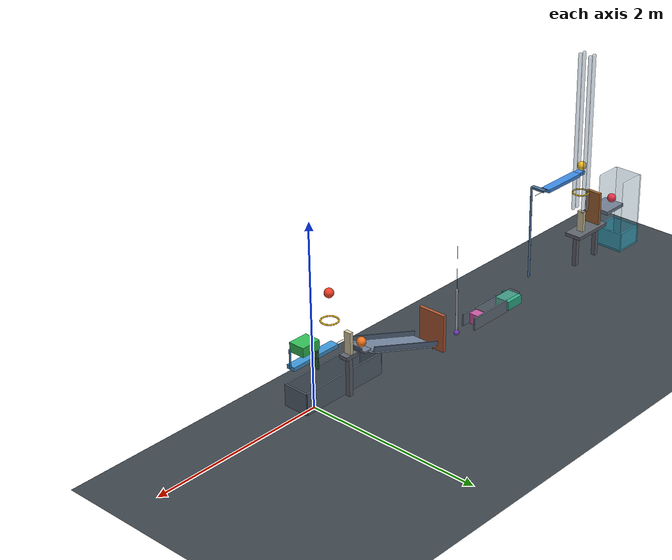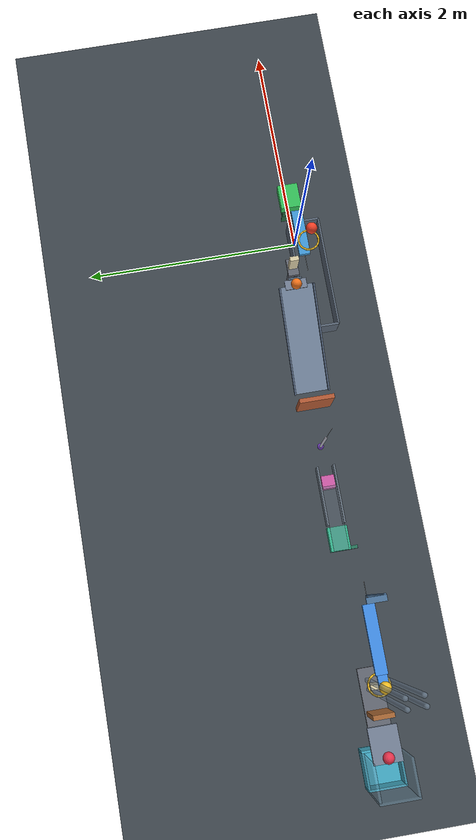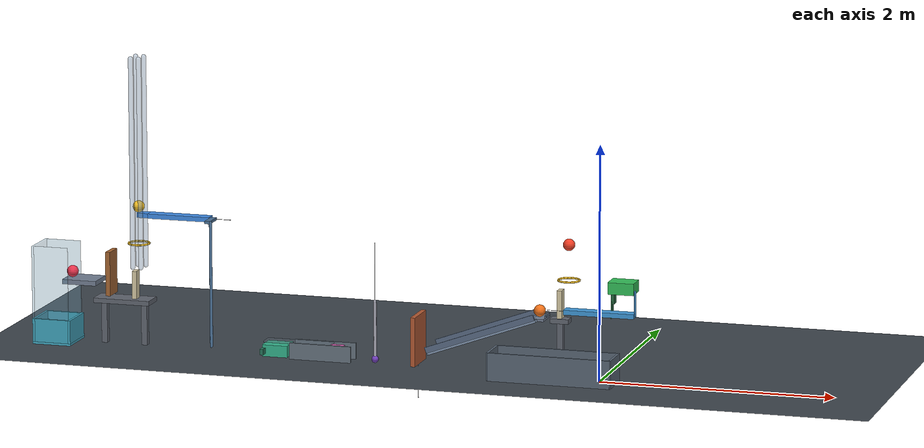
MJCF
<mujoco model="passive_chain_reaction_revised">
  <compiler angle="radian" autolimits="true"/>
  <option timestep="0.002" gravity="0 0 -9.81" integrator="implicitfast" iterations="100" tolerance="1e-10" o_friction="0.72 0.72 0.005 0.0001 0.0001" o_solref="0.01 0.7156" o_solimp="0.95 0.99 0.001">
    <flag override="enable"/>
  </option>
  <size njmax="3000" nconmax="800"/>
  <visual>
    <global azimuth="110" elevation="-25"/>
    <quality shadowsize="2048"/>
    <map znear="0.01" zfar="40"/>
  </visual>

  <worldbody>
    <light name="key_light" pos="-2 -3 6" dir="0 0 -1" diffuse="0.8 0.8 0.8"/>
    <light name="fill_light" pos="-3 3 4" dir="0 0 -1" diffuse="0.45 0.45 0.45"/>
    <camera name="overview" pos="-2.2 -7 3.6" xyaxes="1 0 0 0 0.38 0.925"/>
    <geom name="floor" type="plane" size="8 5 0.1" condim="6" friction="0.72 0.005 0.0001" rgba="0.24 0.27 0.30 1"/>

    <!-- Initially dead-centre extension springs supplement contact impulses. -->
    <site name="lever_spring_anchor" pos="-0.45 0 0.58" size="0.004" rgba="0.7 0.7 0.7 1"/>
    <site name="door_spring_anchor" pos="-1.609693 0.12 -0.275" size="0.004" rgba="0.7 0.7 0.7 1"/>
    <site name="pendulum_spring_anchor" pos="-1.99 0.12 1.03" size="0.004" rgba="0.7 0.7 0.7 1"/>
    <site name="seesaw_spring_anchor" pos="-3.270 0.12 1.15" size="0.004" rgba="0.7 0.7 0.7 1"/>

    <body name="ball1" pos="-0.26 -0.02 1.15">
      <freejoint name="ball1_free"/>
      <geom name="ball1_sphere" type="sphere" size="0.05" mass="0.20" condim="6" rgba="0.95 0.25 0.15 1"/>
    </body>

    <!-- Capsule centre lines circumscribe a circle of radius 0.088 m. -->
    <body name="ring1" pos="-0.26 -0.02 0.85">
      <geom name="ring1_01" type="capsule" fromto="0.089724 0 0 0.082894 0.034336 0" size="0.008" rgba="0.95 0.75 0.15 1"/>
      <geom name="ring1_02" type="capsule" fromto="0.082894 0.034336 0 0.063444 0.063444 0" size="0.008" rgba="0.95 0.75 0.15 1"/>
      <geom name="ring1_03" type="capsule" fromto="0.063444 0.063444 0 0.034336 0.082894 0" size="0.008" rgba="0.95 0.75 0.15 1"/>
      <geom name="ring1_04" type="capsule" fromto="0.034336 0.082894 0 0 0.089724 0" size="0.008" rgba="0.95 0.75 0.15 1"/>
      <geom name="ring1_05" type="capsule" fromto="0 0.089724 0 -0.034336 0.082894 0" size="0.008" rgba="0.95 0.75 0.15 1"/>
      <geom name="ring1_06" type="capsule" fromto="-0.034336 0.082894 0 -0.063444 0.063444 0" size="0.008" rgba="0.95 0.75 0.15 1"/>
      <geom name="ring1_07" type="capsule" fromto="-0.063444 0.063444 0 -0.082894 0.034336 0" size="0.008" rgba="0.95 0.75 0.15 1"/>
      <geom name="ring1_08" type="capsule" fromto="-0.082894 0.034336 0 -0.089724 0 0" size="0.008" rgba="0.95 0.75 0.15 1"/>
      <geom name="ring1_09" type="capsule" fromto="-0.089724 0 0 -0.082894 -0.034336 0" size="0.008" rgba="0.95 0.75 0.15 1"/>
      <geom name="ring1_10" type="capsule" fromto="-0.082894 -0.034336 0 -0.063444 -0.063444 0" size="0.008" rgba="0.95 0.75 0.15 1"/>
      <geom name="ring1_11" type="capsule" fromto="-0.063444 -0.063444 0 -0.034336 -0.082894 0" size="0.008" rgba="0.95 0.75 0.15 1"/>
      <geom name="ring1_12" type="capsule" fromto="-0.034336 -0.082894 0 0 -0.089724 0" size="0.008" rgba="0.95 0.75 0.15 1"/>
      <geom name="ring1_13" type="capsule" fromto="0 -0.089724 0 0.034336 -0.082894 0" size="0.008" rgba="0.95 0.75 0.15 1"/>
      <geom name="ring1_14" type="capsule" fromto="0.034336 -0.082894 0 0.063444 -0.063444 0" size="0.008" rgba="0.95 0.75 0.15 1"/>
      <geom name="ring1_15" type="capsule" fromto="0.063444 -0.063444 0 0.082894 -0.034336 0" size="0.008" rgba="0.95 0.75 0.15 1"/>
      <geom name="ring1_16" type="capsule" fromto="0.082894 -0.034336 0 0.089724 0 0" size="0.008" rgba="0.95 0.75 0.15 1"/>
    </body>

    <body name="lever1" pos="0 0 0.58">
      <inertial pos="0 0 0" mass="0.50" diaginertia="0.000483333 0.015066667 0.015416667"/>
      <joint name="lever1_hinge" type="hinge" axis="0 -1 0" damping="0.04" limited="true" range="0 0.785398163" solreflimit="0.004 1"/>
      <geom name="lever1_beam" type="box" size="0.30 0.05 0.02" mass="0" rgba="0.25 0.60 0.85 1"/>
      <geom name="lever1_kicker" type="capsule" fromto="0.302 0 0 0.302 0 0.20" size="0.010" mass="0" rgba="0.20 0.45 0.65 1"/>
      <site name="lever_spring_tip" pos="0.28 0 0" size="0.004"/>
    </body>

    <!-- The elevated horn strikes a vertical cart face, not its constrained underside. -->
    <body name="cart1" pos="0.18 0.075 0.80">
      <joint name="cart1_slide" type="slide" axis="-1 0 0" damping="0.20" limited="true" range="0 0.42" solreflimit="0.006 1"/>
      <geom name="cart1_box" type="box" size="0.11 0.09 0.05" mass="0.50" rgba="0.20 0.75 0.35 1"/>
      <geom name="cart1_striker" type="box" pos="-0.105 0.045 -0.18" size="0.005 0.03 0.10" mass="0" rgba="0.15 0.40 0.25 1"/>
      <geom name="cart1_striker_link" type="box" pos="-0.095 0.045 -0.10" size="0.015 0.03 0.055" mass="0" rgba="0.15 0.40 0.25 1"/>
    </body>

    <!-- Catch ball1 after its lever impact so it cannot trigger downstream parts. -->
    <body name="ball1_catch" pos="-0.375 -0.095 0">
      <geom name="ball1_catch_left" type="box" pos="-0.525 0 0.12" size="0.010 0.145 0.12" rgba="0.35 0.40 0.46 1"/>
      <geom name="ball1_catch_right" type="box" pos="0.525 0 0.12" size="0.010 0.145 0.12" rgba="0.35 0.40 0.46 1"/>
      <geom name="ball1_catch_front" type="box" pos="0 -0.145 0.12" size="0.525 0.008 0.12" rgba="0.35 0.40 0.46 1"/>
      <geom name="ball1_catch_back" type="box" pos="0 0.145 0.12" size="0.525 0.008 0.12" rgba="0.35 0.40 0.46 1"/>
    </body>

    <body name="domino1" pos="-0.37 0.12 0.612020143">
      <freejoint name="domino1_free"/>
      <geom name="domino1_box" type="box" size="0.02 0.04 0.12" mass="0.25" rgba="0.85 0.80 0.65 1"/>
    </body>

    <body name="domino1_support" pos="-0.37 0.12 0.472020143">
      <geom name="domino1_support_top" type="box" size="0.08 0.05 0.02" rgba="0.38 0.40 0.44 1"/>
      <geom name="domino1_support_leg" type="box" pos="0 0 -0.2260100715" size="0.025 0.025 0.2260100715" rgba="0.38 0.40 0.44 1"/>
    </body>

    <body name="ball2" pos="-0.55 0.12 0.543020143">
      <freejoint name="ball2_free"/>
      <geom name="ball2_sphere" type="sphere" size="0.05" mass="0.20" condim="6" rgba="0.95 0.45 0.10 1"/>
    </body>

    <body name="ramp1_entry" pos="-0.535 0.12 0.482020143">
      <geom name="ramp1_entry_plate" type="box" size="0.045 0.10 0.01" rgba="0.45 0.50 0.58 1"/>
      <geom name="ramp1_entry_backstop" type="box" pos="0.048 0 0.023" size="0.007 0.060 0.010" rgba="0.35 0.42 0.50 1"/>
    </body>

    <body name="ramp1" pos="-1.016426169 0.12 0.311613145" quat="0.984807753 0 -0.173648178 0">
      <geom name="ramp1_surface" type="box" size="0.50 0.15 0.01" rgba="0.50 0.58 0.68 1"/>
      <geom name="ramp1_side_a" type="box" pos="0 -0.157 0.035" size="0.50 0.007 0.025" rgba="0.35 0.42 0.52 1"/>
      <geom name="ramp1_side_b" type="box" pos="0 0.157 0.035" size="0.50 0.007 0.025" rgba="0.35 0.42 0.52 1"/>
    </body>

    <!-- Hinge elevation clears the panel's rotating lower corner through 70 degrees. -->
    <body name="door1" pos="-1.609693 0.12 0.025">
      <joint name="door1_hinge" type="hinge" axis="0 -1 0" damping="0.04" limited="true" range="0 1.221730476" solreflimit="0.004 1"/>
      <geom name="door1_panel" type="box" pos="0 0 0.21" size="0.02 0.16 0.21" mass="0.45" rgba="0.70 0.35 0.20 1"/>
      <site name="door_spring_tip" pos="0 0 0.35" size="0.004"/>
    </body>

    <body name="pendulum1" pos="-1.99 0.12 0.53">
      <joint name="pendulum1_hinge" type="hinge" axis="0 1 0" damping="0.04" limited="true" range="0 0.663225116" solreflimit="0.006 1"/>
      <geom name="pendulum1_rod" type="capsule" fromto="0 0 0 0 0 -0.50" size="0.012" mass="0.07" rgba="0.65 0.65 0.70 1"/>
      <geom name="pendulum1_bob" type="sphere" pos="0 0 -0.50" size="0.03" mass="0.28" rgba="0.45 0.25 0.75 1"/>
      <site name="pendulum_spring_tip" pos="0 0 -0.50" size="0.004"/>
    </body>

    <body name="block1" pos="-2.333 0.12 0.06">
      <freejoint name="block1_free"/>
      <geom name="block1_box" type="box" size="0.06 0.06 0.06" mass="0.35" rgba="0.80 0.35 0.65 1"/>
    </body>

    <body name="block1_guide" pos="-2.61 0.12 0">
      <geom name="block1_guide_a" type="box" pos="0.157 -0.077 0.070" size="0.270 0.008 0.070" rgba="0.40 0.45 0.50 1"/>
      <geom name="block1_guide_b" type="box" pos="0.157 0.077 0.070" size="0.270 0.008 0.070" rgba="0.40 0.45 0.50 1"/>
      <geom name="block1_guide_roof" type="box" pos="-0.0565 0 0.132" size="0.2935 0.068 0.005" rgba="0.40 0.45 0.50 0.35"/>
    </body>

    <body name="cart2" pos="-2.853 0.12 0.06">
      <joint name="cart2_slide" type="slide" axis="-1 0 0" damping="0.20" limited="true" range="0 0.42" solreflimit="0.006 1"/>
      <geom name="cart2_box" type="box" size="0.11 0.09 0.05" mass="0.50" rgba="0.20 0.70 0.55 1"/>
      <geom name="cart2_side_striker" type="box" pos="-0.095 -0.0675 0" size="0.015 0.0875 0.025" mass="0" rgba="0.15 0.45 0.35 1"/>
    </body>

    <!-- Overall beam dimensions are 0.65 by 0.10 by 0.04 m. -->
    <!-- Its narrowed launch neck passes between the vertical guide rails. -->
    <body name="seesaw1" pos="-3.770 0.12 1.15">
      <inertial pos="0 0 0" mass="0.55" diaginertia="0.000531667 0.019437917 0.019822917"/>
      <joint name="seesaw1_hinge" type="hinge" axis="0 1 0" damping="0.04" limited="true" range="0 0.733038286" solreflimit="0.004 1"/>
      <geom name="seesaw1_beam" type="box" pos="0.05 0 0" size="0.275 0.05 0.02" mass="0" rgba="0.25 0.55 0.90 1"/>
      <geom name="seesaw1_launch_neck" type="box" pos="-0.275 0 0" size="0.05 0.040 0.02" mass="0" rgba="0.25 0.55 0.90 1"/>
      <geom name="seesaw1_striker_crossarm" type="box" pos="0.350 -0.075 0" size="0.025 0.085 0.012" mass="0" rgba="0.30 0.45 0.60 1"/>
      <geom name="seesaw1_striker_extension" type="capsule" fromto="0.375 -0.15 0 0.375 -0.15 -1.07" size="0.012" mass="0" rgba="0.30 0.45 0.60 1"/>
      <site name="seesaw_spring_tip" pos="-0.30 0 0" size="0.004"/>
    </body>

    <body name="ball3" pos="-4.090 0.12 1.22">
      <freejoint name="ball3_free"/>
      <geom name="ball3_sphere" type="sphere" size="0.05" mass="0.20" condim="6" rgba="0.95 0.75 0.15 1"/>
    </body>

    <!-- Four rails limit horizontal ball motion while clearing the beam neck. -->
    <body name="ball3_launch_guide" pos="-4.090 0.12 0">
      <geom name="ball3_launch_guide_a" type="capsule" fromto="-0.036 -0.065 0.70 -0.036 -0.065 2.50" size="0.020" rgba="0.55 0.65 0.75 0.45"/>
      <geom name="ball3_launch_guide_b" type="capsule" fromto="-0.036 0.065 0.70 -0.036 0.065 2.50" size="0.020" rgba="0.55 0.65 0.75 0.45"/>
      <geom name="ball3_launch_guide_c" type="capsule" fromto="0.036 -0.065 0.70 0.036 -0.065 2.50" size="0.020" rgba="0.55 0.65 0.75 0.45"/>
      <geom name="ball3_launch_guide_d" type="capsule" fromto="0.036 0.065 0.70 0.036 0.065 2.50" size="0.020" rgba="0.55 0.65 0.75 0.45"/>
    </body>

    <body name="ring2" pos="-4.090 0.12 0.90">
      <geom name="ring2_01" type="capsule" fromto="0.089724 0 0 0.082894 0.034336 0" size="0.008" rgba="0.95 0.75 0.15 1"/>
      <geom name="ring2_02" type="capsule" fromto="0.082894 0.034336 0 0.063444 0.063444 0" size="0.008" rgba="0.95 0.75 0.15 1"/>
      <geom name="ring2_03" type="capsule" fromto="0.063444 0.063444 0 0.034336 0.082894 0" size="0.008" rgba="0.95 0.75 0.15 1"/>
      <geom name="ring2_04" type="capsule" fromto="0.034336 0.082894 0 0 0.089724 0" size="0.008" rgba="0.95 0.75 0.15 1"/>
      <geom name="ring2_05" type="capsule" fromto="0 0.089724 0 -0.034336 0.082894 0" size="0.008" rgba="0.95 0.75 0.15 1"/>
      <geom name="ring2_06" type="capsule" fromto="-0.034336 0.082894 0 -0.063444 0.063444 0" size="0.008" rgba="0.95 0.75 0.15 1"/>
      <geom name="ring2_07" type="capsule" fromto="-0.063444 0.063444 0 -0.082894 0.034336 0" size="0.008" rgba="0.95 0.75 0.15 1"/>
      <geom name="ring2_08" type="capsule" fromto="-0.082894 0.034336 0 -0.089724 0 0" size="0.008" rgba="0.95 0.75 0.15 1"/>
      <geom name="ring2_09" type="capsule" fromto="-0.089724 0 0 -0.082894 -0.034336 0" size="0.008" rgba="0.95 0.75 0.15 1"/>
      <geom name="ring2_10" type="capsule" fromto="-0.082894 -0.034336 0 -0.063444 -0.063444 0" size="0.008" rgba="0.95 0.75 0.15 1"/>
      <geom name="ring2_11" type="capsule" fromto="-0.063444 -0.063444 0 -0.034336 -0.082894 0" size="0.008" rgba="0.95 0.75 0.15 1"/>
      <geom name="ring2_12" type="capsule" fromto="-0.034336 -0.082894 0 0 -0.089724 0" size="0.008" rgba="0.95 0.75 0.15 1"/>
      <geom name="ring2_13" type="capsule" fromto="0 -0.089724 0 0.034336 -0.082894 0" size="0.008" rgba="0.95 0.75 0.15 1"/>
      <geom name="ring2_14" type="capsule" fromto="0.034336 -0.082894 0 0.063444 -0.063444 0" size="0.008" rgba="0.95 0.75 0.15 1"/>
      <geom name="ring2_15" type="capsule" fromto="0.063444 -0.063444 0 0.082894 -0.034336 0" size="0.008" rgba="0.95 0.75 0.15 1"/>
      <geom name="ring2_16" type="capsule" fromto="0.082894 -0.034336 0 0.089724 0 0" size="0.008" rgba="0.95 0.75 0.15 1"/>
    </body>

    <!-- Ball3 strikes the right top edge, tipping domino2 toward negative x. -->
    <body name="domino2" pos="-4.125 0.12 0.54">
      <freejoint name="domino2_free"/>
      <geom name="domino2_box" type="box" size="0.02 0.04 0.12" mass="0.25" rgba="0.85 0.80 0.65 1"/>
    </body>

    <body name="domino2_support" pos="-4.225 0.12 0.40">
      <geom name="domino2_support_top" type="box" size="0.25 0.10 0.02" rgba="0.38 0.40 0.44 1"/>
      <geom name="domino2_support_leg_a" type="box" pos="0.18 0 -0.19" size="0.025 0.025 0.19" rgba="0.38 0.40 0.44 1"/>
      <geom name="domino2_support_leg_b" type="box" pos="-0.18 0 -0.19" size="0.025 0.025 0.19" rgba="0.38 0.40 0.44 1"/>
    </body>

    <!-- Raised hinge clears the support throughout the flap's 60-degree rotation. -->
    <body name="flap1" pos="-4.345 0.12 0.442">
      <joint name="flap1_hinge" type="hinge" axis="0 -1 0" damping="0.04" limited="true" range="0 1.047197551" solreflimit="0.004 1"/>
      <geom name="flap1_panel" type="box" pos="0 0 0.19" size="0.02 0.09 0.19" mass="0.28" rgba="0.65 0.40 0.20 1"/>
    </body>

    <body name="ball4" pos="-4.695 0.12 0.62">
      <freejoint name="ball4_free"/>
      <geom name="ball4_sphere" type="sphere" size="0.05" mass="0.20" condim="6" rgba="0.90 0.20 0.30 1"/>
    </body>

    <body name="shelf1" pos="-4.595 0.12 0.55">
      <geom name="shelf1_plate" type="box" size="0.15 0.125 0.02" rgba="0.45 0.50 0.58 1"/>
    </body>

    <!-- Inner footprint 0.30 by 0.30 m; walls 0.20 m high and 0.02 m thick. -->
    <body name="cup1" pos="-4.835 0.12 0">
      <geom name="cup1_bottom" type="box" pos="0 0 0.01" size="0.17 0.17 0.01" condim="6" rgba="0.25 0.65 0.75 1"/>
      <geom name="cup1_wall_x_minus" type="box" pos="-0.16 0 0.12" size="0.01 0.17 0.10" rgba="0.25 0.65 0.75 1"/>
      <geom name="cup1_wall_x_plus" type="box" pos="0.16 0 0.12" size="0.01 0.17 0.10" rgba="0.25 0.65 0.75 1"/>
      <geom name="cup1_wall_y_minus" type="box" pos="0 -0.16 0.12" size="0.15 0.01 0.10" rgba="0.25 0.65 0.75 1"/>
      <geom name="cup1_wall_y_plus" type="box" pos="0 0.16 0.12" size="0.15 0.01 0.10" rgba="0.25 0.65 0.75 1"/>
    </body>

    <body name="cup1_catch_guide" pos="-4.835 0.12 0">
      <geom name="cup1_catch_guide_back" type="box" pos="-0.16 0 0.535" size="0.01 0.17 0.315" rgba="0.45 0.65 0.75 0.35"/>
      <geom name="cup1_catch_guide_side_a" type="box" pos="0 -0.16 0.535" size="0.15 0.01 0.315" rgba="0.45 0.65 0.75 0.35"/>
      <geom name="cup1_catch_guide_side_b" type="box" pos="0 0.16 0.535" size="0.15 0.01 0.315" rgba="0.45 0.65 0.75 0.35"/>
    </body>
  </worldbody>

  <tendon>
    <spatial name="lever1_toggle_spring" stiffness="80" damping="0.02" springlength="0.15 0.15" width="0.002" rgba="0.7 0.7 0.7 0.5">
      <site site="lever_spring_anchor"/>
      <site site="lever_spring_tip"/>
    </spatial>
    <spatial name="door1_toggle_spring" stiffness="12" damping="0.02" springlength="0.15 0.15" width="0.002" rgba="0.7 0.7 0.7 0.5">
      <site site="door_spring_anchor"/>
      <site site="door_spring_tip"/>
    </spatial>
    <spatial name="pendulum1_toggle_spring" stiffness="160" damping="0.02" springlength="0.20 0.20" width="0.002" rgba="0.7 0.7 0.7 0.5">
      <site site="pendulum_spring_anchor"/>
      <site site="pendulum_spring_tip"/>
    </spatial>
    <spatial name="seesaw1_toggle_spring" stiffness="100" damping="0.02" springlength="0.10 0.10" width="0.002" rgba="0.7 0.7 0.7 0.5">
      <site site="seesaw_spring_anchor"/>
      <site site="seesaw_spring_tip"/>
    </spatial>
  </tendon>

  <keyframe>
    <key name="start" time="0"/>
  </keyframe>
</mujoco>
